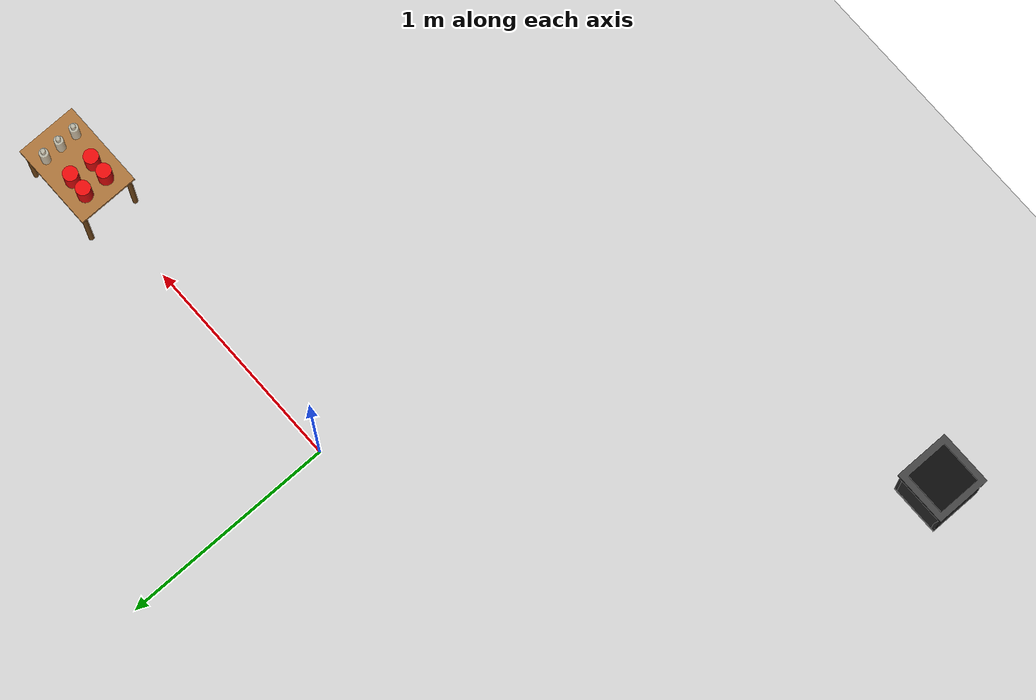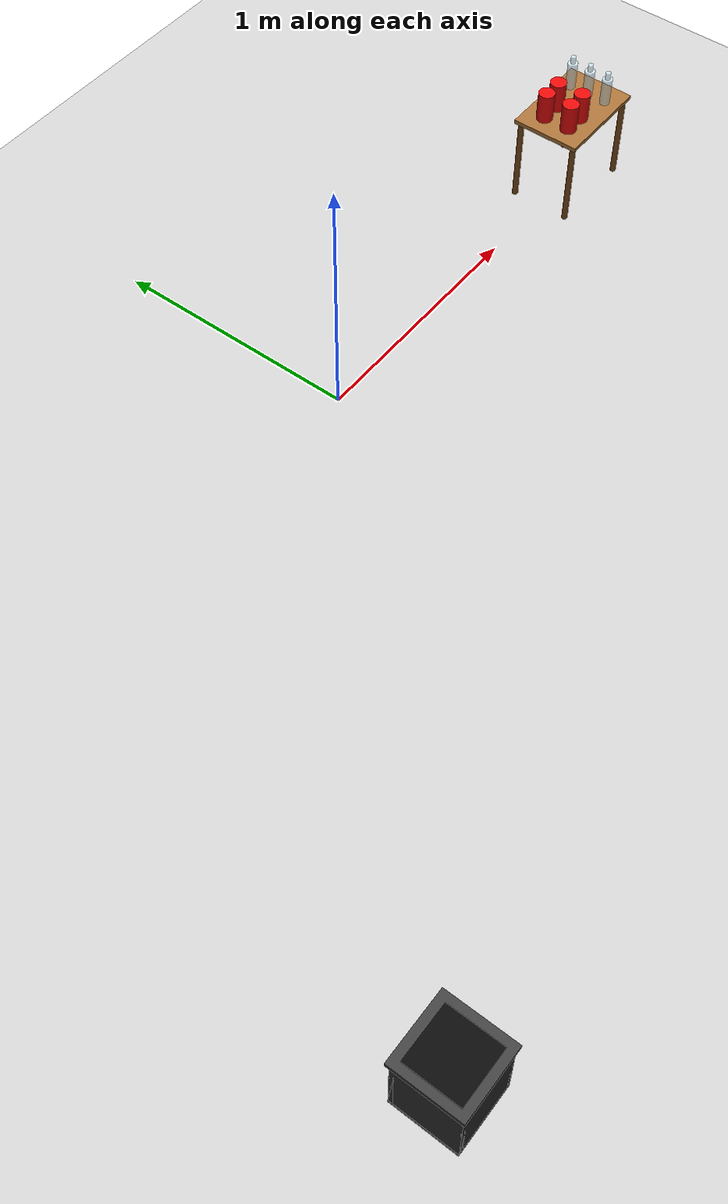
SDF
<sdf version="1.8">
 <world name="room_with_walls_star">
  <physics name="1ms" type="ignored">
   <max_step_size>0.001</max_step_size>
   <real_time_factor>1.0</real_time_factor>
  </physics>
  <plugin filename="gz-sim-physics-system" name="gz::sim::systems::Physics"/>
  <plugin filename="gz-sim-user-commands-system" name="gz::sim::systems::UserCommands"/>
  <plugin filename="gz-sim-scene-broadcaster-system" name="gz::sim::systems::SceneBroadcaster"/>
  <plugin filename="gz-sim-contact-system" name="gz::sim::systems::Contact"/>
  <plugin filename="gz-sim-sensors-system" name="gz::sim::systems::Sensors">
   <render_engine>ogre2</render_engine>
  </plugin>
  <plugin filename="gz-sim-imu-system" name="gz::sim::systems::Imu"/>
  <light type="directional" name="sun">
   <pose>0 0 10 0 0 0</pose>
   <diffuse>0.8 0.8 0.8 1</diffuse>
   <specular>0.2 0.2 0.2 1</specular>
   <attenuation>
    <range>1000</range>
    <constant>0.9</constant>
    <linear>0.01</linear>
    <quadratic>0.001</quadratic>
   </attenuation>
   <direction>-0.5 0.1 -0.9</direction>
  </light>
  <gravity>0 0 -9.8</gravity>
  <magnetic_field>5.5645e-06 2.28758e-05 -4.23884e-05</magnetic_field>
  <atmosphere type="adiabatic"/>
  <scene><ambient>0.4 0.4 0.4 1</ambient><background>0.7 0.7 0.7 1</background><shadows>true</shadows></scene>
  <model name="ground_plane">
   <static>true</static>
   <link name="link">
    <collision name="collision">
     <geometry><plane><normal>0 0 1</normal><size>100 100</size></plane></geometry>
     <surface><friction><ode><mu>50</mu></ode></friction></surface>
    </collision>
    <visual name="visual">
     <geometry><plane><normal>0 0 1</normal><size>100 100</size></plane></geometry>
     <material>
      <ambient>0.8 0.8 0.8 1</ambient>
      <diffuse>0.8 0.8 0.8 1</diffuse>
      <specular>0.8 0.8 0.8 1</specular>
     </material>
    </visual>
   </link>
  </model>
  <model name="table_top">
   <static>true</static>
   <pose>1.5 0.0 0.369 0 0 0</pose>
   <link name="link">
    <collision name="col"><geometry><box><size>0.40 0.28 0.018</size></box></geometry></collision>
    <visual name="vis">
     <geometry><box><size>0.40 0.28 0.018</size></box></geometry>
     <material>
      <ambient>0.62 0.42 0.22 1</ambient>
      <diffuse>0.65 0.44 0.22 1</diffuse>
      <specular>0.25 0.18 0.08 1</specular>
     </material>
    </visual>
   </link>
  </model>
  <model name="table_leg_fl">
   <static>true</static>
   <pose>1.32 0.12 0.18 0 0 0</pose>
   <link name="link">
    <collision name="col">
     <geometry><cylinder><radius>0.012</radius><length>0.36</length></cylinder></geometry>
    </collision>
    <visual name="vis">
     <geometry><cylinder><radius>0.012</radius><length>0.36</length></cylinder></geometry>
     <material><ambient>0.45 0.28 0.10 1</ambient><diffuse>0.45 0.28 0.10 1</diffuse></material>
    </visual>
   </link>
  </model>
  <model name="table_leg_fr">
   <static>true</static>
   <pose>1.32 -0.12 0.18 0 0 0</pose>
   <link name="link">
    <collision name="col">
     <geometry><cylinder><radius>0.012</radius><length>0.36</length></cylinder></geometry>
    </collision>
    <visual name="vis">
     <geometry><cylinder><radius>0.012</radius><length>0.36</length></cylinder></geometry>
     <material><ambient>0.45 0.28 0.10 1</ambient><diffuse>0.45 0.28 0.10 1</diffuse></material>
    </visual>
   </link>
  </model>
  <model name="table_leg_bl">
   <static>true</static>
   <pose>1.68 0.12 0.18 0 0 0</pose>
   <link name="link">
    <collision name="col">
     <geometry><cylinder><radius>0.012</radius><length>0.36</length></cylinder></geometry>
    </collision>
    <visual name="vis">
     <geometry><cylinder><radius>0.012</radius><length>0.36</length></cylinder></geometry>
     <material><ambient>0.45 0.28 0.10 1</ambient><diffuse>0.45 0.28 0.10 1</diffuse></material>
    </visual>
   </link>
  </model>
  <model name="table_leg_br">
   <static>true</static>
   <pose>1.68 -0.12 0.18 0 0 0</pose>
   <link name="link">
    <collision name="col">
     <geometry><cylinder><radius>0.012</radius><length>0.36</length></cylinder></geometry>
    </collision>
    <visual name="vis">
     <geometry><cylinder><radius>0.012</radius><length>0.36</length></cylinder></geometry>
     <material><ambient>0.45 0.28 0.10 1</ambient><diffuse>0.45 0.28 0.10 1</diffuse></material>
    </visual>
   </link>
  </model>
  <model name="coke_can_1">
   <static>false</static>
   <pose>1.38 0.055 0.439 0 0 0</pose>
   <link name="link">
    <inertial>
     <mass>0.37</mass>
     <inertia><ixx>0.00057</ixx><iyy>0.00057</iyy><izz>0.00002</izz><ixy>0</ixy><ixz>0</ixz><iyz>0</iyz></inertia>
    </inertial>
    <collision name="col">
     <geometry><cylinder><radius>0.033</radius><length>0.122</length></cylinder></geometry>
    </collision>
    <visual name="vis">
     <geometry><cylinder><radius>0.033</radius><length>0.122</length></cylinder></geometry>
     <material>
      <ambient>0.88 0.04 0.04 1</ambient>
      <diffuse>0.90 0.04 0.04 1</diffuse>
      <specular>0.7 0.7 0.7 1</specular>
     </material>
    </visual>
   </link>
  </model>
  <model name="coke_can_2">
   <static>false</static>
   <pose>1.38 -0.055 0.439 0 0 0</pose>
   <link name="link">
    <inertial>
     <mass>0.37</mass>
     <inertia><ixx>0.00057</ixx><iyy>0.00057</iyy><izz>0.00002</izz><ixy>0</ixy><ixz>0</ixz><iyz>0</iyz></inertia>
    </inertial>
    <collision name="col">
     <geometry><cylinder><radius>0.033</radius><length>0.122</length></cylinder></geometry>
    </collision>
    <visual name="vis">
     <geometry><cylinder><radius>0.033</radius><length>0.122</length></cylinder></geometry>
     <material>
      <ambient>0.88 0.04 0.04 1</ambient>
      <diffuse>0.90 0.04 0.04 1</diffuse>
      <specular>0.7 0.7 0.7 1</specular>
     </material>
    </visual>
   </link>
  </model>
  <model name="coke_can_3">
   <static>false</static>
   <pose>1.46 0.055 0.439 0 0 0</pose>
   <link name="link">
    <inertial>
     <mass>0.37</mass>
     <inertia><ixx>0.00057</ixx><iyy>0.00057</iyy><izz>0.00002</izz><ixy>0</ixy><ixz>0</ixz><iyz>0</iyz></inertia>
    </inertial>
    <collision name="col">
     <geometry><cylinder><radius>0.033</radius><length>0.122</length></cylinder></geometry>
    </collision>
    <visual name="vis">
     <geometry><cylinder><radius>0.033</radius><length>0.122</length></cylinder></geometry>
     <material>
      <ambient>0.88 0.04 0.04 1</ambient>
      <diffuse>0.90 0.04 0.04 1</diffuse>
      <specular>0.7 0.7 0.7 1</specular>
     </material>
    </visual>
   </link>
  </model>
  <model name="coke_can_4">
   <static>false</static>
   <pose>1.46 -0.055 0.439 0 0 0</pose>
   <link name="link">
    <inertial>
     <mass>0.37</mass>
     <inertia><ixx>0.00057</ixx><iyy>0.00057</iyy><izz>0.00002</izz><ixy>0</ixy><ixz>0</ixz><iyz>0</iyz></inertia>
    </inertial>
    <collision name="col">
     <geometry><cylinder><radius>0.033</radius><length>0.122</length></cylinder></geometry>
    </collision>
    <visual name="vis">
     <geometry><cylinder><radius>0.033</radius><length>0.122</length></cylinder></geometry>
     <material>
      <ambient>0.88 0.04 0.04 1</ambient>
      <diffuse>0.90 0.04 0.04 1</diffuse>
      <specular>0.7 0.7 0.7 1</specular>
     </material>
    </visual>
   </link>
  </model>
  <model name="bottle_1_body">
   <static>false</static>
   <pose>1.60 0.08 0.436 0 0 0</pose>
   <link name="link">
    <inertial>
     <mass>0.40</mass>
     <inertia><ixx>0.00045</ixx><iyy>0.00045</iyy><izz>0.00002</izz><ixy>0</ixy><ixz>0</ixz><iyz>0</iyz></inertia>
    </inertial>
    <collision name="col">
     <geometry><cylinder><radius>0.005</radius><length>0.115</length></cylinder></geometry>
     <surface><contact><collide_bitmask>0x02</collide_bitmask></contact></surface>
    </collision>
    <visual name="vis">
     <geometry><cylinder><radius>0.020</radius><length>0.115</length></cylinder></geometry>
     <material>
      <ambient>0.78 0.93 1.0 0.55</ambient>
      <diffuse>0.78 0.93 1.0 0.55</diffuse>
      <specular>0.9 0.9 0.9 1</specular>
     </material>
    </visual>
   </link>
  </model>
  <model name="bottle_1_neck">
   <static>false</static>
   <pose>1.60 0.08 0.508 0 0 0</pose>
   <link name="link">
    <collision name="col">
     <geometry><cylinder><radius>0.0025</radius><length>0.030</length></cylinder></geometry>
     <surface><contact><collide_bitmask>0x02</collide_bitmask></contact></surface>
    </collision>
    <visual name="vis">
     <geometry><cylinder><radius>0.010</radius><length>0.030</length></cylinder></geometry>
     <material>
      <ambient>0.78 0.93 1.0 0.55</ambient>
      <diffuse>0.78 0.93 1.0 0.55</diffuse>
      <specular>0.9 0.9 0.9 1</specular>
     </material>
    </visual>
   </link>
  </model>
  <model name="bottle_2_body">
   <static>false</static>
   <pose>1.60 0.0 0.436 0 0 0</pose>
   <link name="link">
    <inertial>
     <mass>0.40</mass>
     <inertia><ixx>0.00045</ixx><iyy>0.00045</iyy><izz>0.00002</izz><ixy>0</ixy><ixz>0</ixz><iyz>0</iyz></inertia>
    </inertial>
    <collision name="col">
     <geometry><cylinder><radius>0.005</radius><length>0.115</length></cylinder></geometry>
     <surface><contact><collide_bitmask>0x02</collide_bitmask></contact></surface>
    </collision>
    <visual name="vis">
     <geometry><cylinder><radius>0.020</radius><length>0.115</length></cylinder></geometry>
     <material>
      <ambient>0.78 0.93 1.0 0.55</ambient>
      <diffuse>0.78 0.93 1.0 0.55</diffuse>
      <specular>0.9 0.9 0.9 1</specular>
     </material>
    </visual>
   </link>
  </model>
  <model name="bottle_2_neck">
   <static>false</static>
   <pose>1.60 0.0 0.508 0 0 0</pose>
   <link name="link">
    <collision name="col">
     <geometry><cylinder><radius>0.0025</radius><length>0.030</length></cylinder></geometry>
     <surface><contact><collide_bitmask>0x02</collide_bitmask></contact></surface>
    </collision>
    <visual name="vis">
     <geometry><cylinder><radius>0.010</radius><length>0.030</length></cylinder></geometry>
     <material>
      <ambient>0.78 0.93 1.0 0.55</ambient>
      <diffuse>0.78 0.93 1.0 0.55</diffuse>
      <specular>0.9 0.9 0.9 1</specular>
     </material>
    </visual>
   </link>
  </model>
  <model name="bottle_3_body">
   <static>false</static>
   <pose>1.60 -0.08 0.436 0 0 0</pose>
   <link name="link">
    <inertial>
     <mass>0.40</mass>
     <inertia><ixx>0.00045</ixx><iyy>0.00045</iyy><izz>0.00002</izz><ixy>0</ixy><ixz>0</ixz><iyz>0</iyz></inertia>
    </inertial>
    <collision name="col">
     <geometry><cylinder><radius>0.005</radius><length>0.115</length></cylinder></geometry>
     <surface><contact><collide_bitmask>0x02</collide_bitmask></contact></surface>
    </collision>
    <visual name="vis">
     <geometry><cylinder><radius>0.020</radius><length>0.115</length></cylinder></geometry>
     <material>
      <ambient>0.78 0.93 1.0 0.55</ambient>
      <diffuse>0.78 0.93 1.0 0.55</diffuse>
      <specular>0.9 0.9 0.9 1</specular>
     </material>
    </visual>
   </link>
  </model>
  <model name="bottle_3_neck">
   <static>false</static>
   <pose>1.60 -0.08 0.508 0 0 0</pose>
   <link name="link">
    <collision name="col">
     <geometry><cylinder><radius>0.0025</radius><length>0.030</length></cylinder></geometry>
     <surface><contact><collide_bitmask>0x02</collide_bitmask></contact></surface>
    </collision>
    <visual name="vis">
     <geometry><cylinder><radius>0.010</radius><length>0.030</length></cylinder></geometry>
     <material>
      <ambient>0.78 0.93 1.0 0.55</ambient>
      <diffuse>0.78 0.93 1.0 0.55</diffuse>
      <specular>0.9 0.9 0.9 1</specular>
     </material>
    </visual>
   </link>
  </model>
  <model name="bin_floor">
   <static>true</static>
   <pose>-1.8 -1.8 0.010 0 0 0</pose>
   <link name="link">
    <collision name="col"><geometry><box><size>0.24 0.24 0.020</size></box></geometry></collision>
    <visual name="vis">
     <geometry><box><size>0.24 0.24 0.020</size></box></geometry>
     <material>
      <ambient>0.12 0.12 0.12 1</ambient>
      <diffuse>0.14 0.14 0.14 1</diffuse>
      <specular>0.3 0.3 0.3 1</specular>
     </material>
    </visual>
   </link>
  </model>
  <model name="bin_wall_px">
   <static>true</static>
   <pose>-1.688 -1.8 0.155 0 0 0</pose>
   <link name="link">
    <collision name="col"><geometry><box><size>0.016 0.24 0.28</size></box></geometry></collision>
    <visual name="vis">
     <geometry><box><size>0.016 0.24 0.28</size></box></geometry>
     <material>
      <ambient>0.15 0.15 0.15 1</ambient>
      <diffuse>0.18 0.18 0.18 1</diffuse>
      <specular>0.35 0.35 0.35 1</specular>
     </material>
    </visual>
   </link>
  </model>
  <model name="bin_wall_nx">
   <static>true</static>
   <pose>-1.912 -1.8 0.155 0 0 0</pose>
   <link name="link">
    <collision name="col"><geometry><box><size>0.016 0.24 0.28</size></box></geometry></collision>
    <visual name="vis">
     <geometry><box><size>0.016 0.24 0.28</size></box></geometry>
     <material>
      <ambient>0.15 0.15 0.15 1</ambient>
      <diffuse>0.18 0.18 0.18 1</diffuse>
      <specular>0.35 0.35 0.35 1</specular>
     </material>
    </visual>
   </link>
  </model>
  <model name="bin_wall_py">
   <static>true</static>
   <pose>-1.8 -1.688 0.155 0 0 0</pose>
   <link name="link">
    <collision name="col"><geometry><box><size>0.24 0.016 0.28</size></box></geometry></collision>
    <visual name="vis">
     <geometry><box><size>0.24 0.016 0.28</size></box></geometry>
     <material>
      <ambient>0.15 0.15 0.15 1</ambient>
      <diffuse>0.18 0.18 0.18 1</diffuse>
      <specular>0.35 0.35 0.35 1</specular>
     </material>
    </visual>
   </link>
  </model>
  <model name="bin_wall_ny">
   <static>true</static>
   <pose>-1.8 -1.912 0.155 0 0 0</pose>
   <link name="link">
    <collision name="col"><geometry><box><size>0.24 0.016 0.28</size></box></geometry></collision>
    <visual name="vis">
     <geometry><box><size>0.24 0.016 0.28</size></box></geometry>
     <material>
      <ambient>0.15 0.15 0.15 1</ambient>
      <diffuse>0.18 0.18 0.18 1</diffuse>
      <specular>0.35 0.35 0.35 1</specular>
     </material>
    </visual>
   </link>
  </model>
  <model name="bin_rim">
   <static>true</static>
   <pose>-1.8 -1.8 0.302 0 0 0</pose>
   <link name="link">
    <collision name="col"><geometry><box><size>0.258 0.258 0.016</size></box></geometry></collision>
    <visual name="vis">
     <geometry><box><size>0.258 0.258 0.016</size></box></geometry>
     <material>
      <ambient>0.22 0.22 0.22 1</ambient>
      <diffuse>0.25 0.25 0.25 1</diffuse>
      <specular>0.5 0.5 0.5 1</specular>
     </material>
    </visual>
   </link>
  </model>
  <model name="bin_interior_vis">
   <static>true</static>
   <pose>-1.8 -1.8 0.303 0 0 0</pose>
   <link name="link">
    <visual name="vis">
     <geometry><box><size>0.20 0.20 0.018</size></box></geometry>
     <material><ambient>0.04 0.04 0.04 1</ambient><diffuse>0.04 0.04 0.04 1</diffuse></material>
    </visual>
   </link>
  </model>
 </world>
</sdf>
